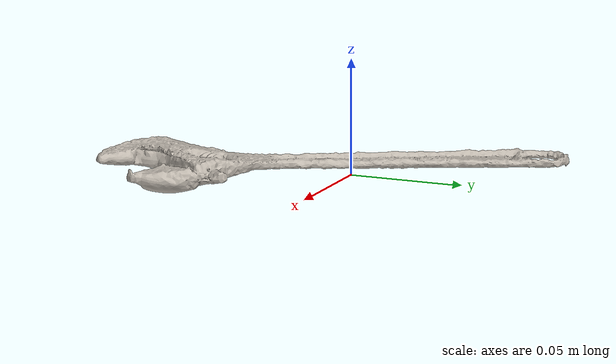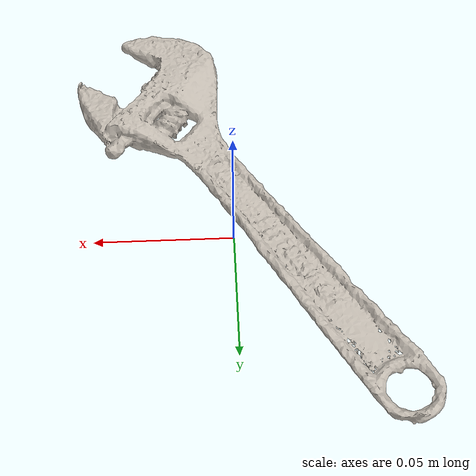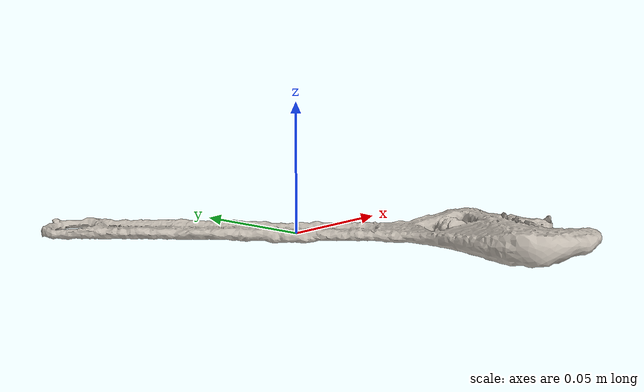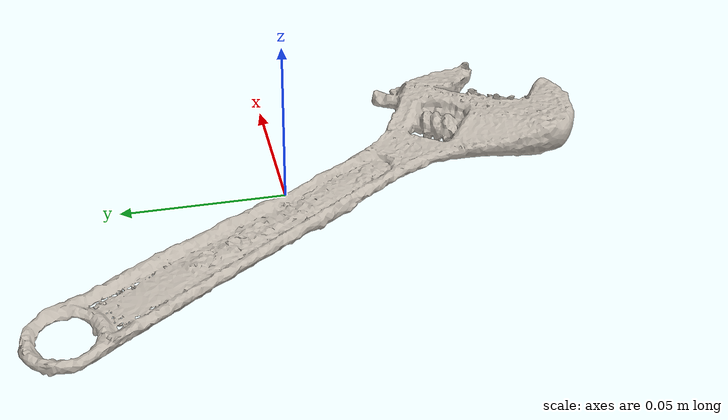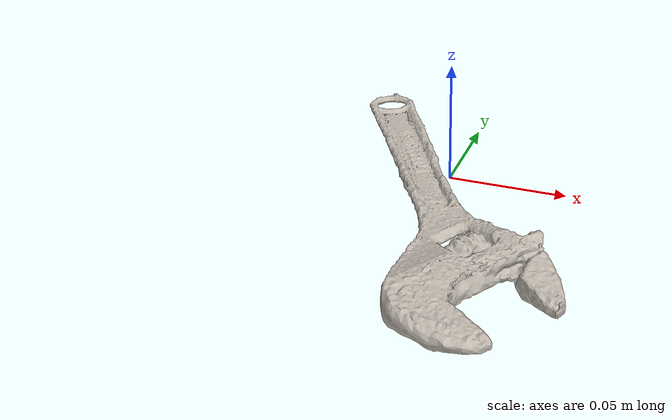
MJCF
<mujoco model="adjustable_wrench">
  <compiler angle="radian" meshdir="assets" texturedir="assets"/>
    <default>
        <default class="ycb_col">
            <geom contype="1" conaffinity="1" group="3" rgba=".4 .5 .6 1"/>
        </default>
        <default class="ycb_viz">
            <geom contype="0" conaffinity="0" type="mesh" mass="0"/>
        </default>
    </default>
  <asset>
    <texture type="2d" name="adjustable_wrench_tex" file="texture_map.png"/>
    <material name="adjustable_wrench_mat" texture="adjustable_wrench_tex" specular="0.5" shininess="0.5"/>
    <mesh file="textured.obj" name="adjustable_wrench"/>
    <mesh file="textured_collision_0.obj" name="adjustable_wrench_collision_0"/>
    <mesh file="textured_collision_1.obj" name="adjustable_wrench_collision_1"/>
    <mesh file="textured_collision_2.obj" name="adjustable_wrench_collision_2"/>
    <mesh file="textured_collision_3.obj" name="adjustable_wrench_collision_3"/>
    <mesh file="textured_collision_4.obj" name="adjustable_wrench_collision_4"/>
    <mesh file="textured_collision_5.obj" name="adjustable_wrench_collision_5"/>
    <mesh file="textured_collision_6.obj" name="adjustable_wrench_collision_6"/>
    <mesh file="textured_collision_7.obj" name="adjustable_wrench_collision_7"/>
    <mesh file="textured_collision_8.obj" name="adjustable_wrench_collision_8"/>
    <mesh file="textured_collision_9.obj" name="adjustable_wrench_collision_9"/>
    <mesh file="textured_collision_10.obj" name="adjustable_wrench_collision_10"/>
    <mesh file="textured_collision_11.obj" name="adjustable_wrench_collision_11"/>
    <mesh file="textured_collision_12.obj" name="adjustable_wrench_collision_12"/>
    <mesh file="textured_collision_13.obj" name="adjustable_wrench_collision_13"/>
    <mesh file="textured_collision_14.obj" name="adjustable_wrench_collision_14"/>
    <mesh file="textured_collision_15.obj" name="adjustable_wrench_collision_15"/>
    <mesh file="textured_collision_16.obj" name="adjustable_wrench_collision_16"/>
    <mesh file="textured_collision_17.obj" name="adjustable_wrench_collision_17"/>
    <mesh file="textured_collision_18.obj" name="adjustable_wrench_collision_18"/>
    <mesh file="textured_collision_19.obj" name="adjustable_wrench_collision_19"/>
    <mesh file="textured_collision_20.obj" name="adjustable_wrench_collision_20"/>
    <mesh file="textured_collision_21.obj" name="adjustable_wrench_collision_21"/>
    <mesh file="textured_collision_22.obj" name="adjustable_wrench_collision_22"/>
    <mesh file="textured_collision_23.obj" name="adjustable_wrench_collision_23"/>
    <mesh file="textured_collision_24.obj" name="adjustable_wrench_collision_24"/>
    <mesh file="textured_collision_25.obj" name="adjustable_wrench_collision_25"/>
    <mesh file="textured_collision_26.obj" name="adjustable_wrench_collision_26"/>
    <mesh file="textured_collision_27.obj" name="adjustable_wrench_collision_27"/>
    <mesh file="textured_collision_28.obj" name="adjustable_wrench_collision_28"/>
    <mesh file="textured_collision_29.obj" name="adjustable_wrench_collision_29"/>
    <mesh file="textured_collision_30.obj" name="adjustable_wrench_collision_30"/>
    <mesh file="textured_collision_31.obj" name="adjustable_wrench_collision_31"/>
    <mesh file="textured_collision_32.obj" name="adjustable_wrench_collision_32"/>
    <mesh file="textured_collision_33.obj" name="adjustable_wrench_collision_33"/>
    <mesh file="textured_collision_34.obj" name="adjustable_wrench_collision_34"/>
    <mesh file="textured_collision_35.obj" name="adjustable_wrench_collision_35"/>
    <mesh file="textured_collision_36.obj" name="adjustable_wrench_collision_36"/>
    <mesh file="textured_collision_37.obj" name="adjustable_wrench_collision_37"/>
    <mesh file="textured_collision_38.obj" name="adjustable_wrench_collision_38"/>
    <mesh file="textured_collision_39.obj" name="adjustable_wrench_collision_39"/>
    <mesh file="textured_collision_40.obj" name="adjustable_wrench_collision_40"/>
    <mesh file="textured_collision_41.obj" name="adjustable_wrench_collision_41"/>
    <mesh file="textured_collision_42.obj" name="adjustable_wrench_collision_42"/>
    <mesh file="textured_collision_43.obj" name="adjustable_wrench_collision_43"/>
  </asset>
  <worldbody>
      <geom material="adjustable_wrench_mat" mesh="adjustable_wrench" class="ycb_viz"/>
      <geom mesh="adjustable_wrench_collision_0" class="ycb_col" conaffinity="1" condim="4" friction="0.1 0.1 0.1" mass="0.030275723308200487" rgba="1 1 1 1" solimp="0.99 0.99 0.01" solref=".001 0.1" type="mesh" group="3"/>
      <geom mesh="adjustable_wrench_collision_1" class="ycb_col" conaffinity="1" condim="4" friction="0.1 0.1 0.1" mass="0.019389929562477655" rgba="1 1 1 1" solimp="0.99 0.99 0.01" solref=".001 0.1" type="mesh" group="3"/>
      <geom mesh="adjustable_wrench_collision_2" class="ycb_col" conaffinity="1" condim="4" friction="0.1 0.1 0.1" mass="0.01656487357701988" rgba="1 1 1 1" solimp="0.99 0.99 0.01" solref=".001 0.1" type="mesh" group="3"/>
      <geom mesh="adjustable_wrench_collision_3" class="ycb_col" conaffinity="1" condim="4" friction="0.1 0.1 0.1" mass="0.0021944470635647546" rgba="1 1 1 1" solimp="0.99 0.99 0.01" solref=".001 0.1" type="mesh" group="3"/>
      <geom mesh="adjustable_wrench_collision_4" class="ycb_col" conaffinity="1" condim="4" friction="0.1 0.1 0.1" mass="0.028576689228781375" rgba="1 1 1 1" solimp="0.99 0.99 0.01" solref=".001 0.1" type="mesh" group="3"/>
      <geom mesh="adjustable_wrench_collision_5" class="ycb_col" conaffinity="1" condim="4" friction="0.1 0.1 0.1" mass="0.014576051057712555" rgba="1 1 1 1" solimp="0.99 0.99 0.01" solref=".001 0.1" type="mesh" group="3"/>
      <geom mesh="adjustable_wrench_collision_6" class="ycb_col" conaffinity="1" condim="4" friction="0.1 0.1 0.1" mass="0.006760815275413325" rgba="1 1 1 1" solimp="0.99 0.99 0.01" solref=".001 0.1" type="mesh" group="3"/>
      <geom mesh="adjustable_wrench_collision_7" class="ycb_col" conaffinity="1" condim="4" friction="0.1 0.1 0.1" mass="0.003401533827232705" rgba="1 1 1 1" solimp="0.99 0.99 0.01" solref=".001 0.1" type="mesh" group="3"/>
      <geom mesh="adjustable_wrench_collision_8" class="ycb_col" conaffinity="1" condim="4" friction="0.1 0.1 0.1" mass="0.0008977900075995355" rgba="1 1 1 1" solimp="0.99 0.99 0.01" solref=".001 0.1" type="mesh" group="3"/>
      <geom mesh="adjustable_wrench_collision_9" class="ycb_col" conaffinity="1" condim="4" friction="0.1 0.1 0.1" mass="0.0032004767487287754" rgba="1 1 1 1" solimp="0.99 0.99 0.01" solref=".001 0.1" type="mesh" group="3"/>
      <geom mesh="adjustable_wrench_collision_10" class="ycb_col" conaffinity="1" condim="4" friction="0.1 0.1 0.1" mass="0.0015467791383648312" rgba="1 1 1 1" solimp="0.99 0.99 0.01" solref=".001 0.1" type="mesh" group="3"/>
      <geom mesh="adjustable_wrench_collision_11" class="ycb_col" conaffinity="1" condim="4" friction="0.1 0.1 0.1" mass="0.005922643437080837" rgba="1 1 1 1" solimp="0.99 0.99 0.01" solref=".001 0.1" type="mesh" group="3"/>
      <geom mesh="adjustable_wrench_collision_12" class="ycb_col" conaffinity="1" condim="4" friction="0.1 0.1 0.1" mass="0.0021561897903885846" rgba="1 1 1 1" solimp="0.99 0.99 0.01" solref=".001 0.1" type="mesh" group="3"/>
      <geom mesh="adjustable_wrench_collision_13" class="ycb_col" conaffinity="1" condim="4" friction="0.1 0.1 0.1" mass="0.0025058024551774267" rgba="1 1 1 1" solimp="0.99 0.99 0.01" solref=".001 0.1" type="mesh" group="3"/>
      <geom mesh="adjustable_wrench_collision_14" class="ycb_col" conaffinity="1" condim="4" friction="0.1 0.1 0.1" mass="0.004158909158227556" rgba="1 1 1 1" solimp="0.99 0.99 0.01" solref=".001 0.1" type="mesh" group="3"/>
      <geom mesh="adjustable_wrench_collision_15" class="ycb_col" conaffinity="1" condim="4" friction="0.1 0.1 0.1" mass="0.011016820224039693" rgba="1 1 1 1" solimp="0.99 0.99 0.01" solref=".001 0.1" type="mesh" group="3"/>
      <geom mesh="adjustable_wrench_collision_16" class="ycb_col" conaffinity="1" condim="4" friction="0.1 0.1 0.1" mass="0.018314078055529127" rgba="1 1 1 1" solimp="0.99 0.99 0.01" solref=".001 0.1" type="mesh" group="3"/>
      <geom mesh="adjustable_wrench_collision_17" class="ycb_col" conaffinity="1" condim="4" friction="0.1 0.1 0.1" mass="0.012024164525972445" rgba="1 1 1 1" solimp="0.99 0.99 0.01" solref=".001 0.1" type="mesh" group="3"/>
      <geom mesh="adjustable_wrench_collision_18" class="ycb_col" conaffinity="1" condim="4" friction="0.1 0.1 0.1" mass="0.0012031704778878707" rgba="1 1 1 1" solimp="0.99 0.99 0.01" solref=".001 0.1" type="mesh" group="3"/>
      <geom mesh="adjustable_wrench_collision_19" class="ycb_col" conaffinity="1" condim="4" friction="0.1 0.1 0.1" mass="0.005118999449144021" rgba="1 1 1 1" solimp="0.99 0.99 0.01" solref=".001 0.1" type="mesh" group="3"/>
      <geom mesh="adjustable_wrench_collision_20" class="ycb_col" conaffinity="1" condim="4" friction="0.1 0.1 0.1" mass="0.0015475163977644773" rgba="1 1 1 1" solimp="0.99 0.99 0.01" solref=".001 0.1" type="mesh" group="3"/>
      <geom mesh="adjustable_wrench_collision_21" class="ycb_col" conaffinity="1" condim="4" friction="0.1 0.1 0.1" mass="0.002900578447209239" rgba="1 1 1 1" solimp="0.99 0.99 0.01" solref=".001 0.1" type="mesh" group="3"/>
      <geom mesh="adjustable_wrench_collision_22" class="ycb_col" conaffinity="1" condim="4" friction="0.1 0.1 0.1" mass="0.0016148155908866867" rgba="1 1 1 1" solimp="0.99 0.99 0.01" solref=".001 0.1" type="mesh" group="3"/>
      <geom mesh="adjustable_wrench_collision_23" class="ycb_col" conaffinity="1" condim="4" friction="0.1 0.1 0.1" mass="0.0020470177807988222" rgba="1 1 1 1" solimp="0.99 0.99 0.01" solref=".001 0.1" type="mesh" group="3"/>
      <geom mesh="adjustable_wrench_collision_24" class="ycb_col" conaffinity="1" condim="4" friction="0.1 0.1 0.1" mass="0.00828410105957909" rgba="1 1 1 1" solimp="0.99 0.99 0.01" solref=".001 0.1" type="mesh" group="3"/>
      <geom mesh="adjustable_wrench_collision_25" class="ycb_col" conaffinity="1" condim="4" friction="0.1 0.1 0.1" mass="0.004836200253379746" rgba="1 1 1 1" solimp="0.99 0.99 0.01" solref=".001 0.1" type="mesh" group="3"/>
      <geom mesh="adjustable_wrench_collision_26" class="ycb_col" conaffinity="1" condim="4" friction="0.1 0.1 0.1" mass="0.000508790699554514" rgba="1 1 1 1" solimp="0.99 0.99 0.01" solref=".001 0.1" type="mesh" group="3"/>
      <geom mesh="adjustable_wrench_collision_27" class="ycb_col" conaffinity="1" condim="4" friction="0.1 0.1 0.1" mass="0.0027165166360560073" rgba="1 1 1 1" solimp="0.99 0.99 0.01" solref=".001 0.1" type="mesh" group="3"/>
      <geom mesh="adjustable_wrench_collision_28" class="ycb_col" conaffinity="1" condim="4" friction="0.1 0.1 0.1" mass="0.0009068364663053294" rgba="1 1 1 1" solimp="0.99 0.99 0.01" solref=".001 0.1" type="mesh" group="3"/>
      <geom mesh="adjustable_wrench_collision_29" class="ycb_col" conaffinity="1" condim="4" friction="0.1 0.1 0.1" mass="0.0011464271327437001" rgba="1 1 1 1" solimp="0.99 0.99 0.01" solref=".001 0.1" type="mesh" group="3"/>
      <geom mesh="adjustable_wrench_collision_30" class="ycb_col" conaffinity="1" condim="4" friction="0.1 0.1 0.1" mass="0.0009131147078273069" rgba="1 1 1 1" solimp="0.99 0.99 0.01" solref=".001 0.1" type="mesh" group="3"/>
      <geom mesh="adjustable_wrench_collision_31" class="ycb_col" conaffinity="1" condim="4" friction="0.1 0.1 0.1" mass="0.0011186104575670267" rgba="1 1 1 1" solimp="0.99 0.99 0.01" solref=".001 0.1" type="mesh" group="3"/>
      <geom mesh="adjustable_wrench_collision_32" class="ycb_col" conaffinity="1" condim="4" friction="0.1 0.1 0.1" mass="0.0033160620491210916" rgba="1 1 1 1" solimp="0.99 0.99 0.01" solref=".001 0.1" type="mesh" group="3"/>
      <geom mesh="adjustable_wrench_collision_33" class="ycb_col" conaffinity="1" condim="4" friction="0.1 0.1 0.1" mass="0.0005927853330256774" rgba="1 1 1 1" solimp="0.99 0.99 0.01" solref=".001 0.1" type="mesh" group="3"/>
      <geom mesh="adjustable_wrench_collision_34" class="ycb_col" conaffinity="1" condim="4" friction="0.1 0.1 0.1" mass="0.0012857693702620788" rgba="1 1 1 1" solimp="0.99 0.99 0.01" solref=".001 0.1" type="mesh" group="3"/>
      <geom mesh="adjustable_wrench_collision_35" class="ycb_col" conaffinity="1" condim="4" friction="0.1 0.1 0.1" mass="0.003654474223559567" rgba="1 1 1 1" solimp="0.99 0.99 0.01" solref=".001 0.1" type="mesh" group="3"/>
      <geom mesh="adjustable_wrench_collision_36" class="ycb_col" conaffinity="1" condim="4" friction="0.1 0.1 0.1" mass="0.0016236925355482081" rgba="1 1 1 1" solimp="0.99 0.99 0.01" solref=".001 0.1" type="mesh" group="3"/>
      <geom mesh="adjustable_wrench_collision_37" class="ycb_col" conaffinity="1" condim="4" friction="0.1 0.1 0.1" mass="0.006114149740306517" rgba="1 1 1 1" solimp="0.99 0.99 0.01" solref=".001 0.1" type="mesh" group="3"/>
      <geom mesh="adjustable_wrench_collision_38" class="ycb_col" conaffinity="1" condim="4" friction="0.1 0.1 0.1" mass="0.0014158405326972184" rgba="1 1 1 1" solimp="0.99 0.99 0.01" solref=".001 0.1" type="mesh" group="3"/>
      <geom mesh="adjustable_wrench_collision_39" class="ycb_col" conaffinity="1" condim="4" friction="0.1 0.1 0.1" mass="0.0009905402113485758" rgba="1 1 1 1" solimp="0.99 0.99 0.01" solref=".001 0.1" type="mesh" group="3"/>
      <geom mesh="adjustable_wrench_collision_40" class="ycb_col" conaffinity="1" condim="4" friction="0.1 0.1 0.1" mass="0.0023229823055866245" rgba="1 1 1 1" solimp="0.99 0.99 0.01" solref=".001 0.1" type="mesh" group="3"/>
      <geom mesh="adjustable_wrench_collision_41" class="ycb_col" conaffinity="1" condim="4" friction="0.1 0.1 0.1" mass="0.003879888220204482" rgba="1 1 1 1" solimp="0.99 0.99 0.01" solref=".001 0.1" type="mesh" group="3"/>
      <geom mesh="adjustable_wrench_collision_42" class="ycb_col" conaffinity="1" condim="4" friction="0.1 0.1 0.1" mass="0.0017675351133484521" rgba="1 1 1 1" solimp="0.99 0.99 0.01" solref=".001 0.1" type="mesh" group="3"/>
      <geom mesh="adjustable_wrench_collision_43" class="ycb_col" conaffinity="1" condim="4" friction="0.1 0.1 0.1" mass="0.0016898683667761212" rgba="1 1 1 1" solimp="0.99 0.99 0.01" solref=".001 0.1" type="mesh" group="3"/>
  </worldbody>
</mujoco>
